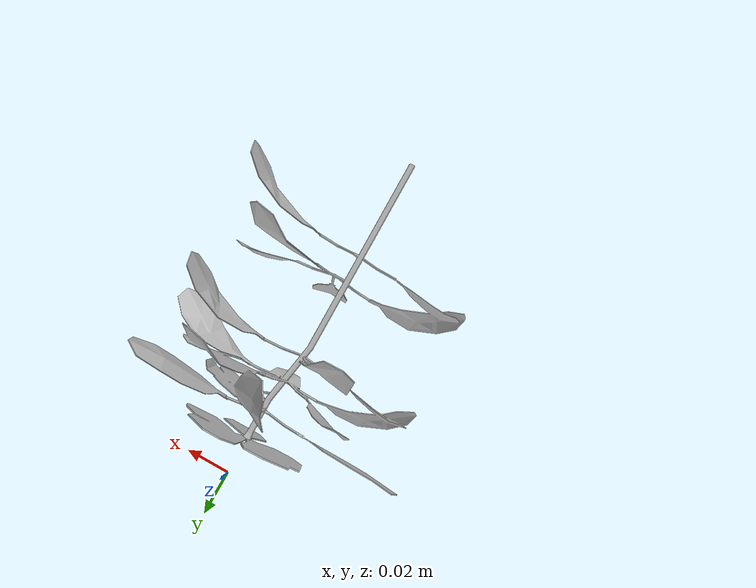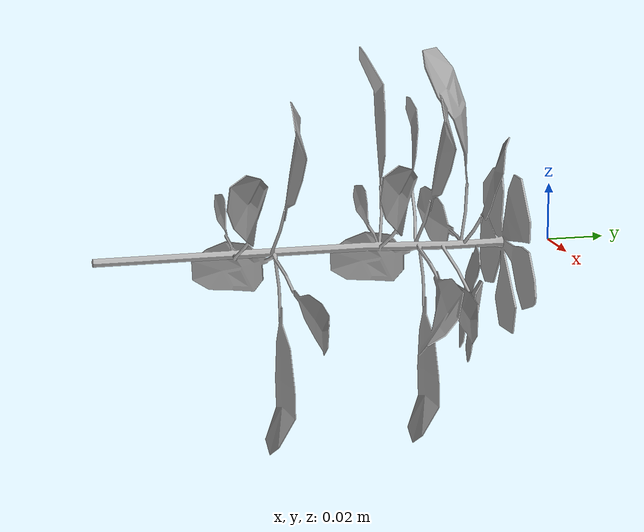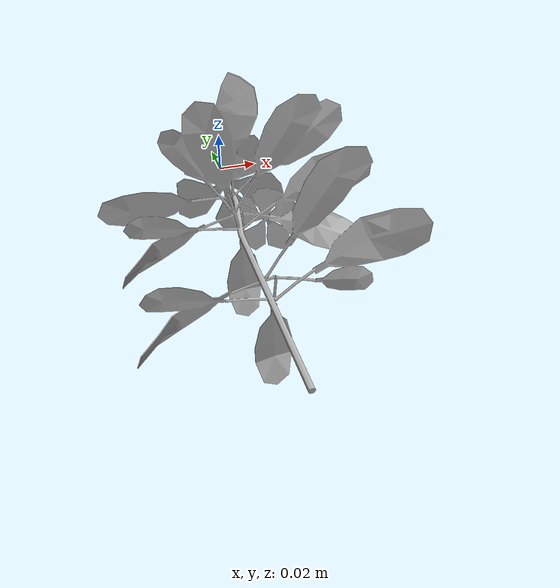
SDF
<?xml version="1.0" ?>
<sdf version="1.5">
  <model name="flower">
    <static>true</static>
    <link name="link">
      <pose>0 0 0 0 0 0</pose>

      <collision name="collision">
        <geometry>
          <mesh>
            <uri>model://Flowers001/meshes/Flor001.obj</uri>
          </mesh>
        </geometry>
        <surface>
          <contact>
            <ode/>
          </contact>
          <bounce/>
          <friction>
            <ode>
              <mu>0.2</mu>
              <mu2>0.2</mu2>
            </ode>
            <ode/>
          </friction>
        </surface>
      </collision>

      <inertial>
        <pose>0 0 0 0 0 0</pose>
        <mass>1</mass>
        <inertia>
          <ixx>1</ixx>
          <ixy>0</ixy>
          <ixz>0</ixz>
          <iyy>1</iyy>
          <iyz>0</iyz>
          <izz>1</izz>
        </inertia>
      </inertial>

      <visual name="something_something">
        <geometry>
          <mesh>
            <uri>model://Flowers001/meshes/Flor001.obj</uri>
          </mesh>
        </geometry>
        <material>
          <script>
            <uri>model://Flowers001/materials/scripts</uri>
            <uri>model://Flowers001/materials/textures</uri>
            <name>flower/Diffuse</name>
          </script>
        </material>
      </visual>
    </link>
  </model>
</sdf>
